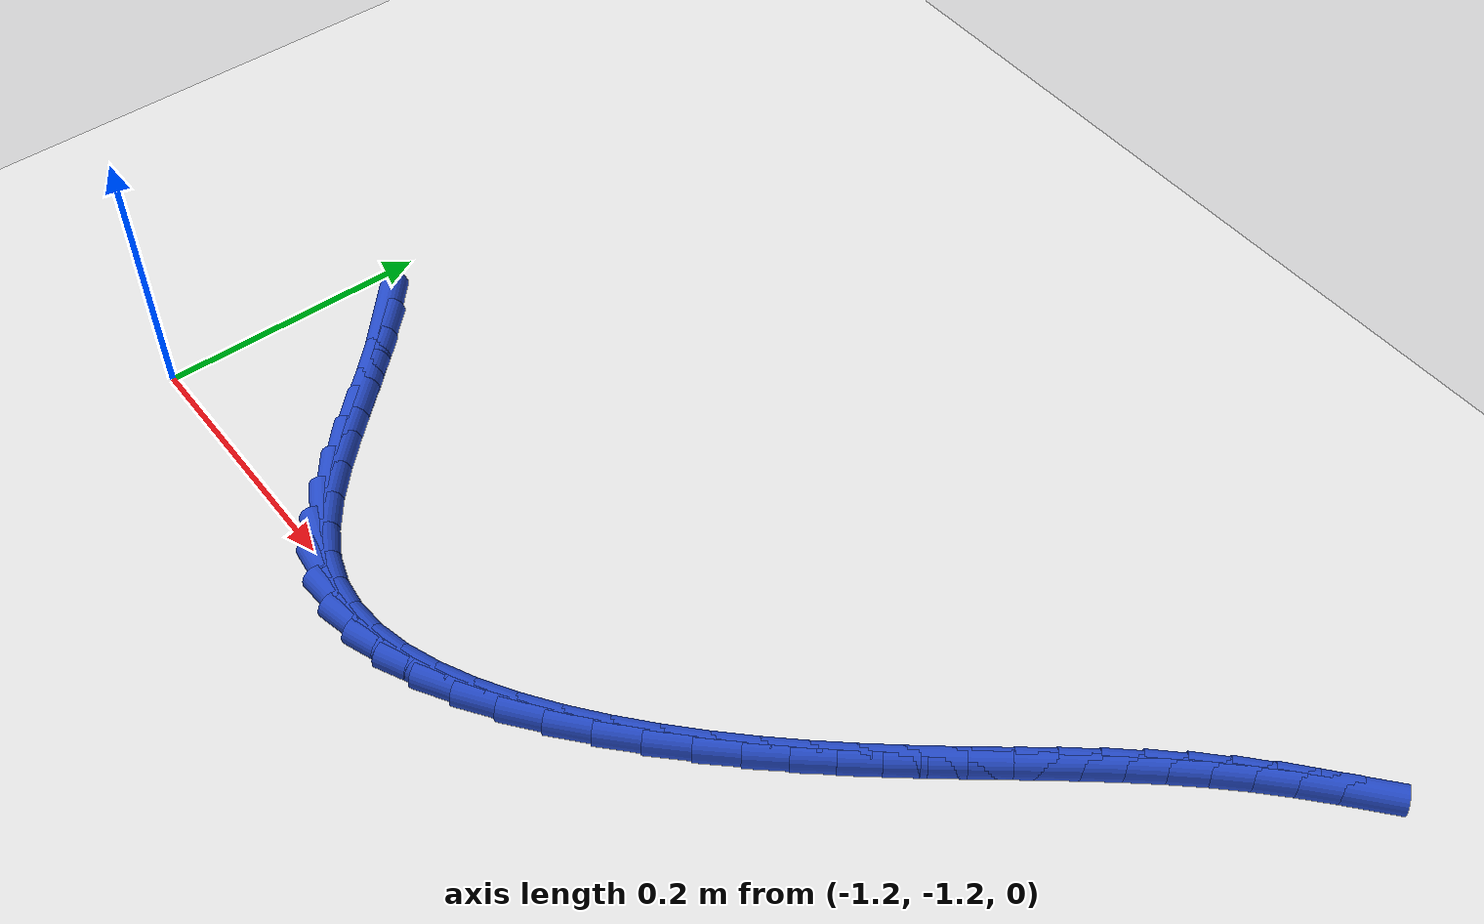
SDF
<sdf version="1.6">
 <world name="default">
  <model name="ground_plane">
   <static>1</static>
   <link name="link">
    <collision name="collision">
     <geometry><plane><normal>0 0 1</normal><size>100 100</size></plane></geometry>
     <surface><friction><ode><mu>100</mu><mu2>50</mu2></ode></friction></surface>
    </collision>
    <visual name="visual">
     <cast_shadows>0</cast_shadows>
     <geometry><plane><normal>0 0 1</normal><size>100 100</size></plane></geometry>
     <material>
      <script><uri>file://media/materials/scripts/gazebo.material</uri><name>Gazebo/WhiteGlow</name></script>
     </material>
    </visual>
   </link>
  </model>
  <model name="line">
   <link name="link_202">
    <pose>-1.1496489927462257 -1.0510690068832151 0.01 0 1.57 -0.7184969397688263</pose>
    <collision name="collision">
     <geometry><cylinder><radius>0.01</radius><length>0.08</length></cylinder></geometry>
    </collision>
    <visual name="visual">
     <material>
      <script><name>Gazebo/Blue</name><uri>file://media/materials/scripts/gazebo.material</uri></script>
     </material>
     <geometry><cylinder><radius>0.01</radius><length>0.08</length></cylinder></geometry>
    </visual>
   </link>
   <link name="link_203">
    <pose>-1.1287787585795093 -1.0693181924293487 0.01 0 1.57 -0.7757920279013939</pose>
    <collision name="collision">
     <geometry><cylinder><radius>0.01</radius><length>0.08</length></cylinder></geometry>
    </collision>
    <visual name="visual">
     <material>
      <script><name>Gazebo/Blue</name><uri>file://media/materials/scripts/gazebo.material</uri></script>
     </material>
     <geometry><cylinder><radius>0.01</radius><length>0.08</length></cylinder></geometry>
    </visual>
   </link>
   <link name="link_204">
    <pose>-1.1081215771046882 -1.089582266685183 0.01 0 1.57 -0.802670079227073</pose>
    <collision name="collision">
     <geometry><cylinder><radius>0.01</radius><length>0.08</length></cylinder></geometry>
    </collision>
    <visual name="visual">
     <material>
      <script><name>Gazebo/Blue</name><uri>file://media/materials/scripts/gazebo.material</uri></script>
     </material>
     <geometry><cylinder><radius>0.01</radius><length>0.08</length></cylinder></geometry>
    </visual>
   </link>
   <link name="link_205">
    <pose>-1.0875236761506717 -1.110904276821768 0.01 0 1.57 -0.8027440168149356</pose>
    <collision name="collision">
     <geometry><cylinder><radius>0.01</radius><length>0.08</length></cylinder></geometry>
    </collision>
    <visual name="visual">
     <material>
      <script><name>Gazebo/Blue</name><uri>file://media/materials/scripts/gazebo.material</uri></script>
     </material>
     <geometry><cylinder><radius>0.01</radius><length>0.08</length></cylinder></geometry>
    </visual>
   </link>
   <link name="link_206">
    <pose>-1.0668312835463742 -1.1323272700101505 0.01 0 1.57 -0.7763968671348184</pose>
    <collision name="collision">
     <geometry><cylinder><radius>0.01</radius><length>0.08</length></cylinder></geometry>
    </collision>
    <visual name="visual">
     <material>
      <script><name>Gazebo/Blue</name><uri>file://media/materials/scripts/gazebo.material</uri></script>
     </material>
     <geometry><cylinder><radius>0.01</radius><length>0.08</length></cylinder></geometry>
    </visual>
   </link>
   <link name="link_207">
    <pose>-1.0458906271207058 -1.1528942934213806 0.01 0 1.57 -0.7209290595143187</pose>
    <collision name="collision">
     <geometry><cylinder><radius>0.01</radius><length>0.08</length></cylinder></geometry>
    </collision>
    <visual name="visual">
     <material>
      <script><name>Gazebo/Blue</name><uri>file://media/materials/scripts/gazebo.material</uri></script>
     </material>
     <geometry><cylinder><radius>0.01</radius><length>0.08</length></cylinder></geometry>
    </visual>
   </link>
   <link name="link_208">
    <pose>-1.024547934702579 -1.171648394226505 0.01 0 1.57 -0.6305277064121453</pose>
    <collision name="collision">
     <geometry><cylinder><radius>0.01</radius><length>0.08</length></cylinder></geometry>
    </collision>
    <visual name="visual">
     <material>
      <script><name>Gazebo/Blue</name><uri>file://media/materials/scripts/gazebo.material</uri></script>
     </material>
     <geometry><cylinder><radius>0.01</radius><length>0.08</length></cylinder></geometry>
    </visual>
   </link>
   <link name="link_209">
    <pose>-1.0026494341209047 -1.1876326195965743 0.01 0 1.57 -0.49681093270690835</pose>
    <collision name="collision">
     <geometry><cylinder><radius>0.01</radius><length>0.08</length></cylinder></geometry>
    </collision>
    <visual name="visual">
     <material>
      <script><name>Gazebo/Blue</name><uri>file://media/materials/scripts/gazebo.material</uri></script>
     </material>
     <geometry><cylinder><radius>0.01</radius><length>0.08</length></cylinder></geometry>
    </visual>
   </link>
   <link name="link_210">
    <pose>-0.9800413532045956 -1.199890016702636 0.01 0 1.57 -0.3139899981808704</pose>
    <collision name="collision">
     <geometry><cylinder><radius>0.01</radius><length>0.08</length></cylinder></geometry>
    </collision>
    <visual name="visual">
     <material>
      <script><name>Gazebo/Blue</name><uri>file://media/materials/scripts/gazebo.material</uri></script>
     </material>
     <geometry><cylinder><radius>0.01</radius><length>0.08</length></cylinder></geometry>
    </visual>
   </link>
   <link name="link_211">
    <pose>-0.9565809568452358 -1.2075083714899861 0.01 0 1.57 -0.11469481361154059</pose>
    <collision name="collision">
     <geometry><cylinder><radius>0.01</radius><length>0.08</length></cylinder></geometry>
    </collision>
    <visual name="visual">
     <material>
      <script><name>Gazebo/Blue</name><uri>file://media/materials/scripts/gazebo.material</uri></script>
     </material>
     <geometry><cylinder><radius>0.01</radius><length>0.08</length></cylinder></geometry>
    </visual>
   </link>
   <link name="link_212">
    <pose>-0.9323054649059918 -1.2103049180448155 0.01 0 1.57 0.06471584859740143</pose>
    <collision name="collision">
     <geometry><cylinder><radius>0.01</radius><length>0.08</length></cylinder></geometry>
    </collision>
    <visual name="visual">
     <material>
      <script><name>Gazebo/Blue</name><uri>file://media/materials/scripts/gazebo.material</uri></script>
     </material>
     <geometry><cylinder><radius>0.01</radius><length>0.08</length></cylinder></geometry>
    </visual>
   </link>
   <link name="link_213">
    <pose>-0.9073986138478908 -1.2086907960230444 0.01 0 1.57 0.21727763344199774</pose>
    <collision name="collision">
     <geometry><cylinder><radius>0.01</radius><length>0.08</length></cylinder></geometry>
    </collision>
    <visual name="visual">
     <material>
      <script><name>Gazebo/Blue</name><uri>file://media/materials/scripts/gazebo.material</uri></script>
     </material>
     <geometry><cylinder><radius>0.01</radius><length>0.08</length></cylinder></geometry>
    </visual>
   </link>
   <link name="link_214">
    <pose>-0.8820484008036188 -1.2030944157288588 0.01 0 1.57 0.34321023616130764</pose>
    <collision name="collision">
     <geometry><cylinder><radius>0.01</radius><length>0.08</length></cylinder></geometry>
    </collision>
    <visual name="visual">
     <material>
      <script><name>Gazebo/Blue</name><uri>file://media/materials/scripts/gazebo.material</uri></script>
     </material>
     <geometry><cylinder><radius>0.01</radius><length>0.08</length></cylinder></geometry>
    </visual>
   </link>
   <link name="link_215">
    <pose>-0.856442822905859 -1.1939441874664447 0.01 0 1.57 0.4460199739834996</pose>
    <collision name="collision">
     <geometry><cylinder><radius>0.01</radius><length>0.08</length></cylinder></geometry>
    </collision>
    <visual name="visual">
     <material>
      <script><name>Gazebo/Blue</name><uri>file://media/materials/scripts/gazebo.material</uri></script>
     </material>
     <geometry><cylinder><radius>0.01</radius><length>0.08</length></cylinder></geometry>
    </visual>
   </link>
   <link name="link_216">
    <pose>-0.8307698772872941 -1.1816685215399867 0.01 0 1.57 0.530033692850665</pose>
    <collision name="collision">
     <geometry><cylinder><radius>0.01</radius><length>0.08</length></cylinder></geometry>
    </collision>
    <visual name="visual">
     <material>
      <script><name>Gazebo/Blue</name><uri>file://media/materials/scripts/gazebo.material</uri></script>
     </material>
     <geometry><cylinder><radius>0.01</radius><length>0.08</length></cylinder></geometry>
    </visual>
   </link>
   <link name="link_217">
    <pose>-0.80521756108061 -1.166695828253672 0.01 0 1.57 0.5992217163820787</pose>
    <collision name="collision">
     <geometry><cylinder><radius>0.01</radius><length>0.08</length></cylinder></geometry>
    </collision>
    <visual name="visual">
     <material>
      <script><name>Gazebo/Blue</name><uri>file://media/materials/scripts/gazebo.material</uri></script>
     </material>
     <geometry><cylinder><radius>0.01</radius><length>0.08</length></cylinder></geometry>
    </visual>
   </link>
   <link name="link_218">
    <pose>-0.779973871418489 -1.1494545179116842 0.01 0 1.57 0.6568449551042412</pose>
    <collision name="collision">
     <geometry><cylinder><radius>0.01</radius><length>0.08</length></cylinder></geometry>
    </collision>
    <visual name="visual">
     <material>
      <script><name>Gazebo/Blue</name><uri>file://media/materials/scripts/gazebo.material</uri></script>
     </material>
     <geometry><cylinder><radius>0.01</radius><length>0.08</length></cylinder></geometry>
    </visual>
   </link>
   <link name="link_219">
    <pose>-0.7552268054336163 -1.1303730008182113 0.01 0 1.57 0.7054640117039981</pose>
    <collision name="collision">
     <geometry><cylinder><radius>0.01</radius><length>0.08</length></cylinder></geometry>
    </collision>
    <visual name="visual">
     <material>
      <script><name>Gazebo/Blue</name><uri>file://media/materials/scripts/gazebo.material</uri></script>
     </material>
     <geometry><cylinder><radius>0.01</radius><length>0.08</length></cylinder></geometry>
    </visual>
   </link>
   <link name="link_220">
    <pose>-0.7311643602586746 -1.109879687277437 0.01 0 1.57 0.7470632311971359</pose>
    <collision name="collision">
     <geometry><cylinder><radius>0.01</radius><length>0.08</length></cylinder></geometry>
    </collision>
    <visual name="visual">
     <material>
      <script><name>Gazebo/Blue</name><uri>file://media/materials/scripts/gazebo.material</uri></script>
     </material>
     <geometry><cylinder><radius>0.01</radius><length>0.08</length></cylinder></geometry>
    </visual>
   </link>
   <link name="link_221">
    <pose>-0.7079745330263494 -1.0884029875935484 0.01 0 1.57 0.7831895013724902</pose>
    <collision name="collision">
     <geometry><cylinder><radius>0.01</radius><length>0.08</length></cylinder></geometry>
    </collision>
    <visual name="visual">
     <material>
      <script><name>Gazebo/Blue</name><uri>file://media/materials/scripts/gazebo.material</uri></script>
     </material>
     <geometry><cylinder><radius>0.01</radius><length>0.08</length></cylinder></geometry>
    </visual>
   </link>
   <link name="link_222">
    <pose>-0.6858453208693233 -1.0663713120707299 0.01 0 1.57 0.8150587151229035</pose>
    <collision name="collision">
     <geometry><cylinder><radius>0.01</radius><length>0.08</length></cylinder></geometry>
    </collision>
    <visual name="visual">
     <material>
      <script><name>Gazebo/Blue</name><uri>file://media/materials/scripts/gazebo.material</uri></script>
     </material>
     <geometry><cylinder><radius>0.01</radius><length>0.08</length></cylinder></geometry>
    </visual>
   </link>
   <link name="link_223">
    <pose>-0.6649591894683192 -1.04420793389015 0.01 0 1.57 0.8428799422228437</pose>
    <collision name="collision">
     <geometry><cylinder><radius>0.01</radius><length>0.08</length></cylinder></geometry>
    </collision>
    <visual name="visual">
     <material>
      <script><name>Gazebo/Blue</name><uri>file://media/materials/scripts/gazebo.material</uri></script>
     </material>
     <geometry><cylinder><radius>0.01</radius><length>0.08</length></cylinder></geometry>
    </visual>
   </link>
   <link name="link_224">
    <pose>-0.6453189706198219 -1.022169298179874 0.01 0 1.57 0.8655626765264274</pose>
    <collision name="collision">
     <geometry><cylinder><radius>0.01</radius><length>0.08</length></cylinder></geometry>
    </collision>
    <visual name="visual">
     <material>
      <script><name>Gazebo/Blue</name><uri>file://media/materials/scripts/gazebo.material</uri></script>
     </material>
     <geometry><cylinder><radius>0.01</radius><length>0.08</length></cylinder></geometry>
    </visual>
   </link>
   <link name="link_225">
    <pose>-0.6267127800804305 -1.0003124408136628 0.01 0 1.57 0.8823150978993235</pose>
    <collision name="collision">
     <geometry><cylinder><radius>0.01</radius><length>0.08</length></cylinder></geometry>
    </collision>
    <visual name="visual">
     <material>
      <script><name>Gazebo/Blue</name><uri>file://media/materials/scripts/gazebo.material</uri></script>
     </material>
     <geometry><cylinder><radius>0.01</radius><length>0.08</length></cylinder></geometry>
    </visual>
   </link>
   <link name="link_226">
    <pose>-0.6089161156505469 -0.9786826792243187 0.01 0 1.57 0.8924751615713</pose>
    <collision name="collision">
     <geometry><cylinder><radius>0.01</radius><length>0.08</length></cylinder></geometry>
    </collision>
    <visual name="visual">
     <material>
      <script><name>Gazebo/Blue</name><uri>file://media/materials/scripts/gazebo.material</uri></script>
     </material>
     <geometry><cylinder><radius>0.01</radius><length>0.08</length></cylinder></geometry>
    </visual>
   </link>
   <link name="link_227">
    <pose>-0.5917044751305733 -0.9573253308446442 0.01 0 1.57 0.8954926867351132</pose>
    <collision name="collision">
     <geometry><cylinder><radius>0.01</radius><length>0.08</length></cylinder></geometry>
    </collision>
    <visual name="visual">
     <material>
      <script><name>Gazebo/Blue</name><uri>file://media/materials/scripts/gazebo.material</uri></script>
     </material>
     <geometry><cylinder><radius>0.01</radius><length>0.08</length></cylinder></geometry>
    </visual>
   </link>
   <link name="link_228">
    <pose>-0.574853356320913 -0.9362857131074435 0.01 0 1.57 0.8909496883572616</pose>
    <collision name="collision">
     <geometry><cylinder><radius>0.01</radius><length>0.08</length></cylinder></geometry>
    </collision>
    <visual name="visual">
     <material>
      <script><name>Gazebo/Blue</name><uri>file://media/materials/scripts/gazebo.material</uri></script>
     </material>
     <geometry><cylinder><radius>0.01</radius><length>0.08</length></cylinder></geometry>
    </visual>
   </link>
   <link name="link_229">
    <pose>-0.5581382570219678 -0.9156091434455185 0.01 0 1.57 0.8785846030259579</pose>
    <collision name="collision">
     <geometry><cylinder><radius>0.01</radius><length>0.08</length></cylinder></geometry>
    </collision>
    <visual name="visual">
     <material>
      <script><name>Gazebo/Blue</name><uri>file://media/materials/scripts/gazebo.material</uri></script>
     </material>
     <geometry><cylinder><radius>0.01</radius><length>0.08</length></cylinder></geometry>
    </visual>
   </link>
   <link name="link_230">
    <pose>-0.5413346750341412 -0.8953409392916734 0.01 0 1.57 0.8583223652160542</pose>
    <collision name="collision">
     <geometry><cylinder><radius>0.01</radius><length>0.08</length></cylinder></geometry>
    </collision>
    <visual name="visual">
     <material>
      <script><name>Gazebo/Blue</name><uri>file://media/materials/scripts/gazebo.material</uri></script>
     </material>
     <geometry><cylinder><radius>0.01</radius><length>0.08</length></cylinder></geometry>
    </visual>
   </link>
   <link name="link_231">
    <pose>-0.5242181081578349 -0.8755264180787101 0.01 0 1.57 0.8303094090053368</pose>
    <collision name="collision">
     <geometry><cylinder><radius>0.01</radius><length>0.08</length></cylinder></geometry>
    </collision>
    <visual name="visual">
     <material>
      <script><name>Gazebo/Blue</name><uri>file://media/materials/scripts/gazebo.material</uri></script>
     </material>
     <geometry><cylinder><radius>0.01</radius><length>0.08</length></cylinder></geometry>
    </visual>
   </link>
   <link name="link_232">
    <pose>-0.5065640541934521 -0.8562108972394331 0.01 0 1.57 0.7949712890662161</pose>
    <collision name="collision">
     <geometry><cylinder><radius>0.01</radius><length>0.08</length></cylinder></geometry>
    </collision>
    <visual name="visual">
     <material>
      <script><name>Gazebo/Blue</name><uri>file://media/materials/scripts/gazebo.material</uri></script>
     </material>
     <geometry><cylinder><radius>0.01</radius><length>0.08</length></cylinder></geometry>
    </visual>
   </link>
   <link name="link_233">
    <pose>-0.48814860767499296 -0.8374394449904246 0.01 0 1.57 0.7569882135767104</pose>
    <collision name="collision">
     <geometry><cylinder><radius>0.01</radius><length>0.08</length></cylinder></geometry>
    </collision>
    <visual name="visual">
     <material>
      <script><name>Gazebo/Blue</name><uri>file://media/materials/scripts/gazebo.material</uri></script>
     </material>
     <geometry><cylinder><radius>0.01</radius><length>0.08</length></cylinder></geometry>
    </visual>
   </link>
   <link name="link_234">
    <pose>-0.4688552148973537 -0.8192122958066352 0.01 0 1.57 0.7252587306712643</pose>
    <collision name="collision">
     <geometry><cylinder><radius>0.01</radius><length>0.08</length></cylinder></geometry>
    </collision>
    <visual name="visual">
     <material>
      <script><name>Gazebo/Blue</name><uri>file://media/materials/scripts/gazebo.material</uri></script>
     </material>
     <geometry><cylinder><radius>0.01</radius><length>0.08</length></cylinder></geometry>
    </visual>
   </link>
   <link name="link_235">
    <pose>-0.44879805179464494 -0.8014333236287674 0.01 0 1.57 0.7006654274720787</pose>
    <collision name="collision">
     <geometry><cylinder><radius>0.01</radius><length>0.08</length></cylinder></geometry>
    </collision>
    <visual name="visual">
     <material>
      <script><name>Gazebo/Blue</name><uri>file://media/materials/scripts/gazebo.material</uri></script>
     </material>
     <geometry><cylinder><radius>0.01</radius><length>0.08</length></cylinder></geometry>
    </visual>
   </link>
  </model>
 </world>
</sdf>
